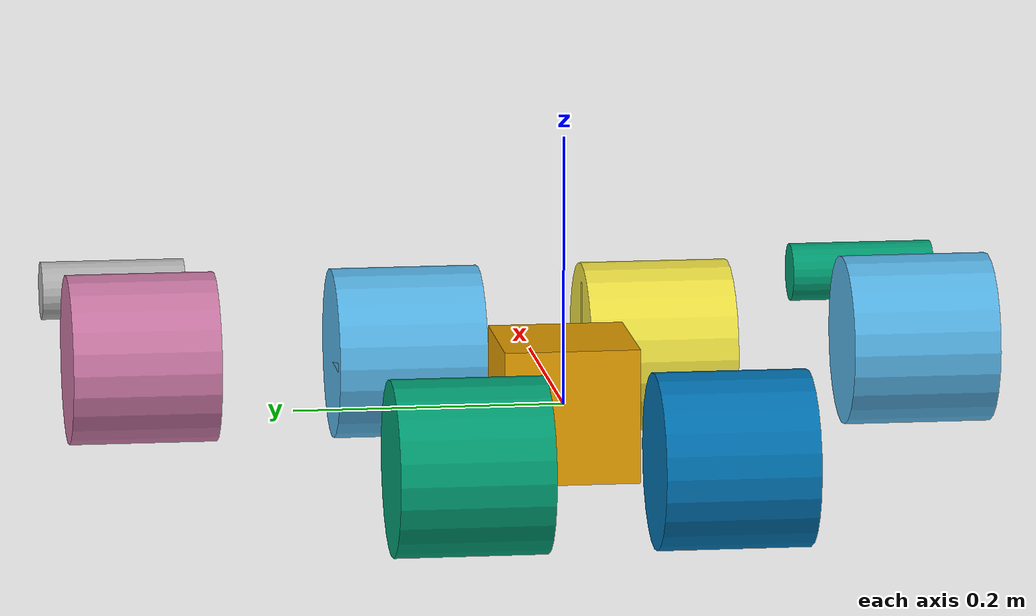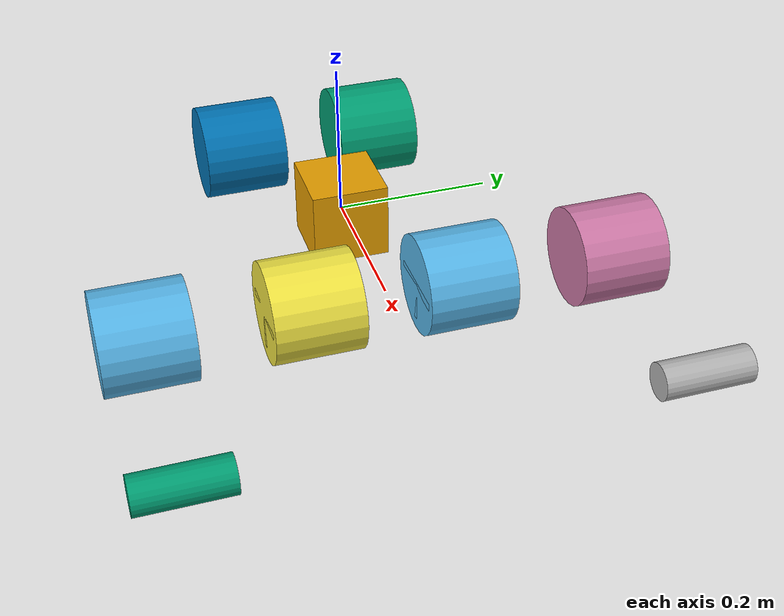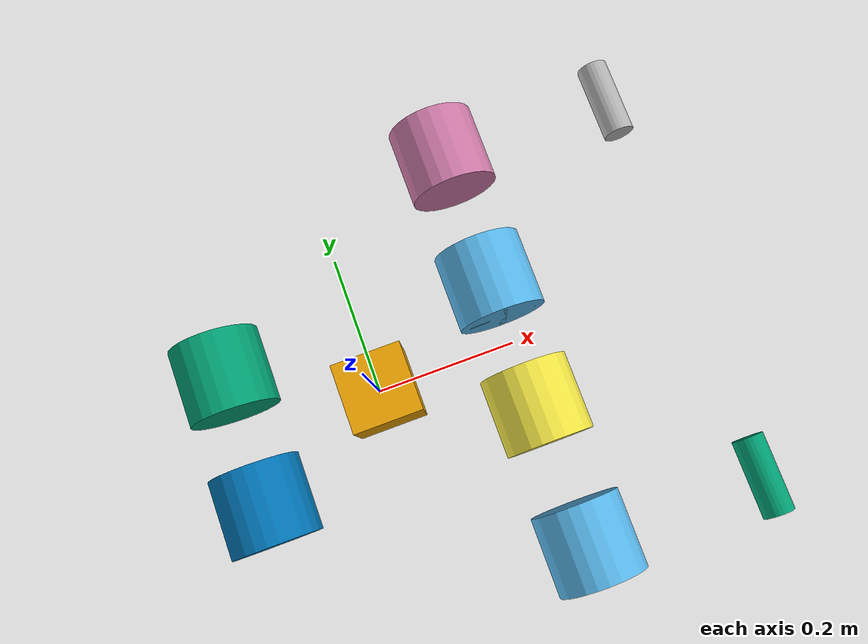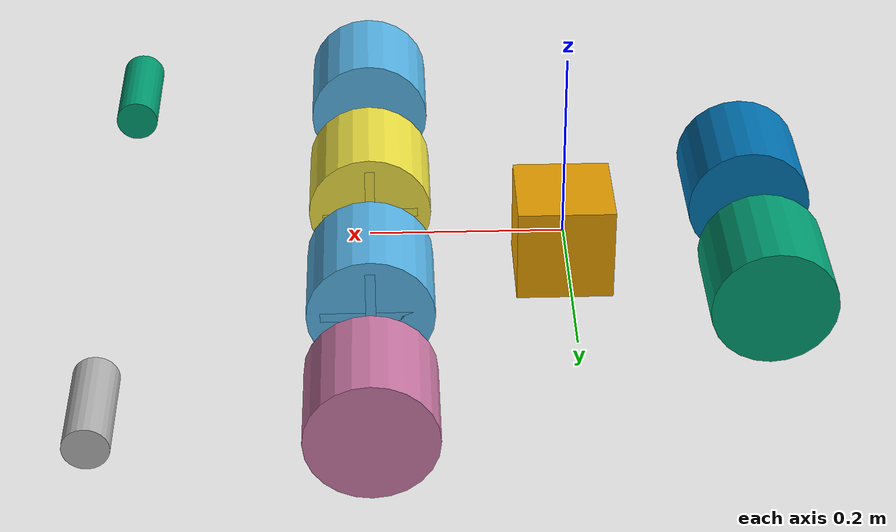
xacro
<robot name="example_track" xmlns:xacro="http://www.ros.org/wiki/xacro">

    <!-- URDF file for general ROS systems such as ros_control, rviz, etc.           -->
    <!-- We define here;                                                             -->
    <!--     * a base_link to be wrapped by the track                                     -->
    <!--     * a sprocket to drive the track                                         -->
    <!--     * an axle and actuator for the sprocket                                 -->
    <!--     * an idler wheel on the other side of the sprocket                      -->
    <!-- Other entities specialized for Gazebo are defined in *_gazebo.urdf.xacro .  -->

    <xacro:macro name="make_box_inertia" params="mass size_x size_y size_z">
        <inertial>
            <mass value="${mass}" />
            <inertia ixx="${mass * (size_y * size_y + size_z * size_z) / 12}" ixy="0" ixz="0" iyy="${mass * (size_z * size_z + size_x * size_x) / 12}" iyz="0" izz="${mass * (size_x * size_x + size_y * size_y) / 12}" />
        </inertial>
    </xacro:macro>

    <xacro:macro name="make_wheel_inertia" params="mass radius length">
        <inertial>
            <mass value="${mass}" />
            <!-- assuming axis of cylinder is y, not z -->
            <inertia ixx="${mass * (radius * radius / 4 + length * length / 12)}" ixy="0" ixz="0" iyy="${mass * radius * radius / 2}" iyz="0" izz="${mass * (radius * radius / 4 + length * length / 12)}" />
        </inertial>
    </xacro:macro>

    <!-- base_link to be wrapped by the track -->

    <link name="base_link">
        <xacro:make_box_inertia mass="50" size_x="0.5" size_y="0.325" size_z="0.1" />

        <visual>
            <geometry>
                <box size="0.1 0.1 0.1" />
            </geometry>
        </visual>

        <collision>
            <geometry>
                <box size="0.1 0.1 0.1" />
            </geometry>
        </collision>
    </link>

    <!-- sprocket driving the track -->
    <link name="sprocket_left">
        <xacro:make_wheel_inertia mass="2.0" radius="0.064" length="0.1115" />

        <visual>
            <origin xyz="0 0 0" rpy="${pi / 2} 0 0" />
            <geometry>
                <cylinder radius="0.064" length="0.1115" />
            </geometry>
        </visual>
        <visual>
            <geometry>
                <box size="0.01 0.1115 0.1" />
            </geometry>
        </visual>
        <visual>
            <geometry>
                <box size="0.1 0.1115 0.01" />
            </geometry>
        </visual>

        <collision>
            <origin xyz="0 0 0" rpy="${pi / 2} 0 0" />
            <geometry>
                <cylinder radius="0.064" length="0.1115" />
            </geometry>
        </collision>
    </link>
    <joint name="sprocket_left_axle" type="continuous">
        <origin xyz="0.2 0.095 0" rpy="0 0 0" />
        <parent link="base_link" />
        <child link="sprocket_left" />
        <axis xyz="0 1 0" />
    </joint>
    <transmission name="sprocket_left_transmission">
        <type>transmission_interface/SimpleTransmission</type>
        <joint name="sprocket_left_axle">
            <hardwareInterface>hardware_interface/VelocityJointInterface</hardwareInterface>
        </joint>
        <actuator name="sprocket_left_actuator">
            <hardwareInterface>hardware_interface/VelocityJointInterface</hardwareInterface>
            <mechanicalReduction>1</mechanicalReduction>
        </actuator>
    </transmission>

    <!-- idler on the other side of the sprocket -->
    <link name="idler_left">
        <xacro:make_wheel_inertia mass="2.0" radius="0.064" length="0.1115" />

        <visual>
            <origin xyz="0 0 0" rpy="${pi / 2} 0 0" />
            <geometry>
                <cylinder radius="0.064" length="0.1115" />
            </geometry>
        </visual>

        <collision>
            <origin xyz="0 0 0" rpy="${pi / 2} 0 0" />
            <geometry>
                <cylinder radius="0.064" length="0.1115" />
            </geometry>
        </collision>
    </link>
    <joint name="idler_left_axle" type="fixed">
        <origin xyz="-0.2 0.095 0" rpy="0 0 0" />
        <parent link="base_link" />
        <child link="idler_left" />
    </joint>

    <!-- sprocket driving the track -->
    <link name="sprocket_right">
        <xacro:make_wheel_inertia mass="2.0" radius="0.064" length="0.1115" />
        <visual>
            <origin xyz="0 0 0" rpy="${pi / 2} 0 0" />
            <geometry>
                <cylinder radius="0.064" length="0.1115" />
            </geometry>
        </visual>
        <visual>
            <geometry>
                <box size="0.01 0.1115 0.1" />
            </geometry>
        </visual>
        <visual>
            <geometry>
                <box size="0.1 0.1115 0.01" />
            </geometry>
        </visual>
        <collision>
            <origin xyz="0 0 0" rpy="${pi / 2} 0 0" />
            <geometry>
                <cylinder radius="0.064" length="0.1115" />
            </geometry>
        </collision>
    </link>
    <joint name="sprocket_right_axle" type="continuous">
        <origin xyz="0.2 -0.095 0" rpy="0 0 0" />
        <parent link="base_link" />
        <child link="sprocket_right" />
        <axis xyz="0 1 0" />
    </joint>
    <transmission name="sprocket_right_transmission">
        <type>transmission_interface/SimpleTransmission</type>
        <joint name="sprocket_right_axle">
            <hardwareInterface>hardware_interface/VelocityJointInterface</hardwareInterface>
        </joint>
        <actuator name="sprocket_right_actuator">
            <hardwareInterface>hardware_interface/VelocityJointInterface</hardwareInterface>
            <mechanicalReduction>1</mechanicalReduction>
        </actuator>
    </transmission>

    <!-- idler on the other side of the sprocket -->
    <link name="idler_right">
        <xacro:make_wheel_inertia mass="2.0" radius="0.064" length="0.1115" />
        <visual>
            <origin xyz="0 0 0" rpy="${pi / 2} 0 0" />
            <geometry>
                <cylinder radius="0.064" length="0.1115" />
            </geometry>
        </visual>
        <collision>
            <origin xyz="0 0 0" rpy="${pi / 2} 0 0" />
            <geometry>
                <cylinder radius="0.064" length="0.1115" />
            </geometry>
        </collision>
    </link>
    <joint name="idler_right_axle" type="fixed">
        <origin xyz="-0.2 -0.095 0" rpy="0 0 0" />
        <parent link="base_link" />
        <child link="idler_right" />
    </joint>

    <!-- flipper fl -->
    <link name="flipper_fl_link">
    </link>
    <joint name="flipper_fl_joint" type="continuous">
        <origin xyz="0.2 0.295 0" rpy="0 0 0" />
        <parent link="base_link" />
        <child link="flipper_fl_link" />
        <axis xyz="0.0 1.0 0.0"/>
    </joint>
    <transmission name="flipper_fl_transmission">
        <type>transmission_interface/SimpleTransmission</type>
        <joint name="flipper_fl_joint">
            <hardwareInterface>hardware_interface/EffortJointInterface</hardwareInterface>
        </joint>
        <actuator name="flipper_fl_actuator">
            <mechanicalReduction>1</mechanicalReduction>
        </actuator>
    </transmission>
    <link name="flipper_fl_sprocket">
        <xacro:make_wheel_inertia mass="2.0" radius="0.064" length="0.1115" />
        <visual>
            <origin xyz="0 0 0" rpy="${pi / 2} 0 0" />
            <geometry>
                <cylinder radius="0.064" length="0.1115" />
            </geometry>
        </visual>

    </link>
    <joint name="flipper_fl_sprocket_axle" type="continuous">
        <origin xyz="0.0 0.0 0" rpy="0 0 0" />
        <parent link="flipper_fl_link" />
        <child link="flipper_fl_sprocket" />
        <axis xyz="0.0 1.0 0.0"/>
    </joint>
    <transmission name="flipper_fl_sprocket_axle_transmission">
        <type>transmission_interface/SimpleTransmission</type>
        <joint name="flipper_fl_sprocket_axle">
            <hardwareInterface>hardware_interface/VelocityJointInterface</hardwareInterface>
        </joint>
        <actuator name="flipper_fl_sprocket_axle_actuator">
            <hardwareInterface>hardware_interface/VelocityJointInterface</hardwareInterface>
            <mechanicalReduction>1</mechanicalReduction>
        </actuator>
    </transmission>
    <link name="flipper_fl_idler">
        <xacro:make_wheel_inertia mass="2.0" radius="0.0225" length="0.1115" />
        <visual>
            <origin xyz="0 0 0" rpy="${pi / 2} 0 0" />
            <geometry>
                <cylinder radius="0.0225" length="0.1115" />
            </geometry>
        </visual>
    </link>
    <joint name="flipper_fl_idler_axle" type="fixed">
        <origin xyz="0.26 0.0 0" rpy="0 0 0" />
        <parent link="flipper_fl_link" />
        <child link="flipper_fl_idler" />
    </joint>

    <!-- flipper fr -->
    <link name="flipper_fr_link">
    </link>
    <joint name="flipper_fr_joint" type="continuous">
        <origin xyz="0.2 -0.295 0" rpy="0 0 0" />
        <parent link="base_link" />
        <child link="flipper_fr_link" />
        <axis xyz="0.0 1.0 0.0"/>
    </joint>
    <transmission name="flipper_fr_transmission">
        <type>transmission_interface/SimpleTransmission</type>
        <joint name="flipper_fr_joint">
            <hardwareInterface>hardware_interface/EffortJointInterface</hardwareInterface>
        </joint>
        <actuator name="flipper_fr_actuator">
            <mechanicalReduction>1</mechanicalReduction>
        </actuator>
    </transmission>
    <link name="flipper_fr_sprocket">
        <xacro:make_wheel_inertia mass="2.0" radius="0.064" length="0.1115" />
        <visual>
            <origin xyz="0 0 0" rpy="${pi / 2} 0 0" />
            <geometry>
                <cylinder radius="0.064" length="0.1115" />
            </geometry>
        </visual>

    </link>
    <joint name="flipper_fr_sprocket_axle" type="continuous">
        <origin xyz="0.0 0.0 0" rpy="0 0 0" />
        <parent link="flipper_fr_link" />
        <child link="flipper_fr_sprocket" />
        <axis xyz="0.0 1.0 0.0"/>
    </joint>
    <transmission name="flipper_fr_sprocket_axle_transmission">
        <type>transmission_interface/SimpleTransmission</type>
        <joint name="flipper_fr_sprocket_axle">
            <hardwareInterface>hardware_interface/VelocityJointInterface</hardwareInterface>
        </joint>
        <actuator name="flipper_fr_sprocket_axle_actuator">
            <hardwareInterface>hardware_interface/VelocityJointInterface</hardwareInterface>
            <mechanicalReduction>1</mechanicalReduction>
        </actuator>
    </transmission>
    <link name="flipper_fr_idler">
        <xacro:make_wheel_inertia mass="2.0" radius="0.0225" length="0.1115" />
        <visual>
            <origin xyz="0 0 0" rpy="${pi / 2} 0 0" />
            <geometry>
                <cylinder radius="0.0225" length="0.1115" />
            </geometry>
        </visual>
    </link>
    <joint name="flipper_fr_idler_axle" type="fixed">
        <origin xyz="0.26 0.0 0" rpy="0 0 0" />
        <parent link="flipper_fr_link" />
        <child link="flipper_fr_idler" />
    </joint>

</robot>
